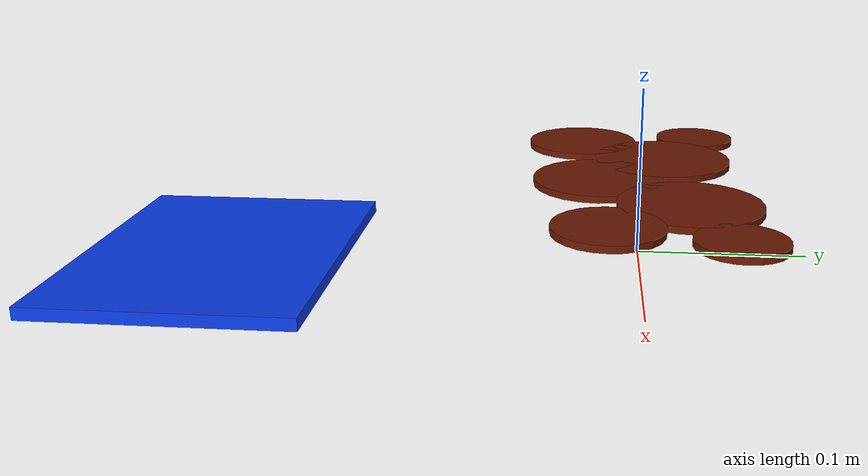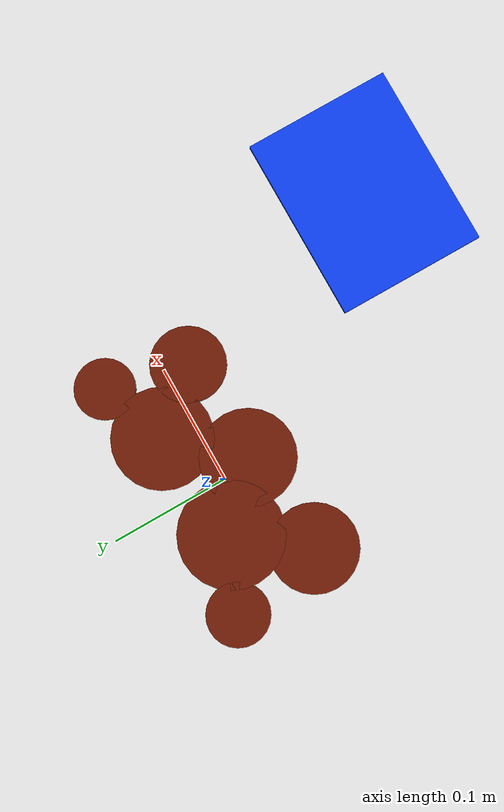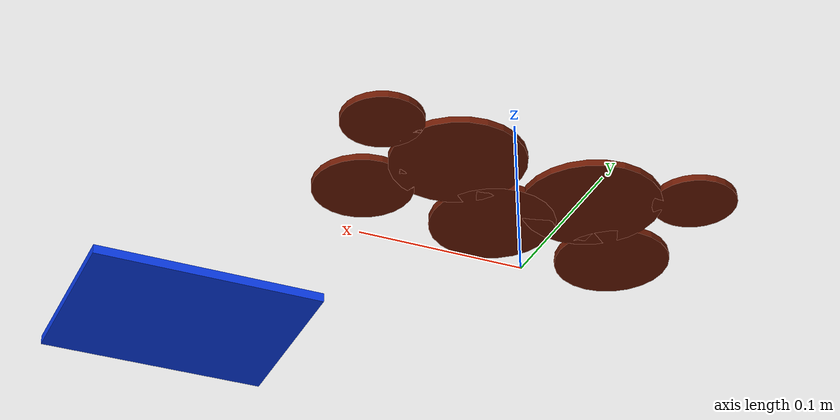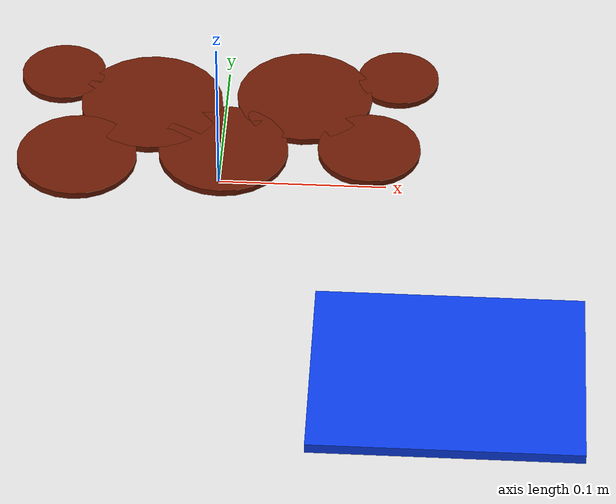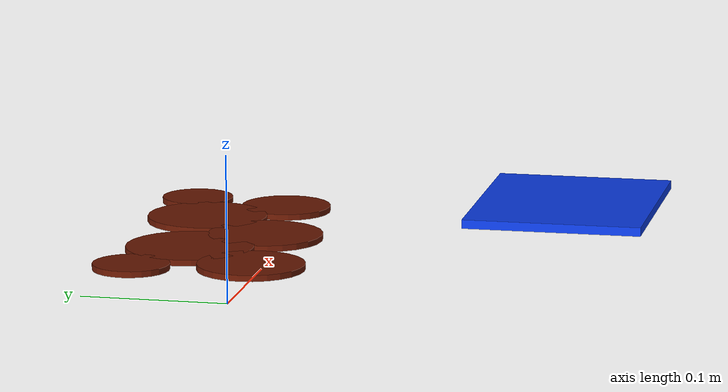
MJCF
<mujoco model="robocasa_spill_patch">
  <!-- Visual, collision-free spill used by the clean-room WipeTable adaptation. -->
  <worldbody>
    <body>
      <body name="object">
        <geom name="spill_marker_0" type="cylinder" pos="-0.080 -0.035 0.046" size="0.035 0.002"
              rgba="0.42 0.10 0.015 0.96" contype="0" conaffinity="0" group="1"/>
        <geom name="spill_marker_1" type="cylinder" pos="-0.040 0.015 0.046" size="0.042 0.002"
              rgba="0.42 0.10 0.015 0.96" contype="0" conaffinity="0" group="1"/>
        <geom name="spill_marker_2" type="cylinder" pos="0.005 -0.025 0.046" size="0.038 0.002"
              rgba="0.42 0.10 0.015 0.96" contype="0" conaffinity="0" group="1"/>
        <geom name="spill_marker_3" type="cylinder" pos="0.050 0.025 0.046" size="0.040 0.002"
              rgba="0.42 0.10 0.015 0.96" contype="0" conaffinity="0" group="1"/>
        <geom name="spill_marker_4" type="cylinder" pos="0.090 -0.020 0.046" size="0.030 0.002"
              rgba="0.42 0.10 0.015 0.96" contype="0" conaffinity="0" group="1"/>
        <geom name="spill_marker_5" type="cylinder" pos="-0.095 0.040 0.046" size="0.025 0.002"
              rgba="0.42 0.10 0.015 0.96" contype="0" conaffinity="0" group="1"/>
        <geom name="spill_marker_6" type="cylinder" pos="0.105 0.045 0.046" size="0.024 0.002"
              rgba="0.42 0.10 0.015 0.96" contype="0" conaffinity="0" group="1"/>
        <!-- Keep the task-semantic release target visible in ordinary RGB. -->
        <geom name="sponge_rest_visual" type="box" pos="0.140 -0.205 0.046"
              size="0.075 0.060 0.003" rgba="0.04 0.24 0.92 1"
              contype="0" conaffinity="0" group="1"/>
        <geom name="sponge_rest_collision" type="box" pos="0.140 -0.205 0.046"
              size="0.075 0.060 0.003" mass="1" friction="1.2 0.3 0.1"
              rgba="0.3 0.3 1 0.2" group="0"/>
        <site name="spill_region" type="box" pos="0 0 0.065" size="0.145 0.085 0.030"
              rgba="0 0 0 0" group="3"/>
        <site name="sponge_rest_region" type="box" pos="0.140 -0.205 0.049"
              quat="1 0 0 0" size="0.065 0.050 0.003" rgba="0 0 0 0" group="3"/>
      </body>
      <site name="bottom_site" pos="0 0 0" size="0.003" rgba="0 0 0 0"/>
      <site name="top_site" pos="0 0 0.045" size="0.003" rgba="0 0 0 0"/>
      <site name="horizontal_radius_site" pos="0.145 0.085 0" size="0.003" rgba="0 0 0 0"/>
    </body>
  </worldbody>
</mujoco>
